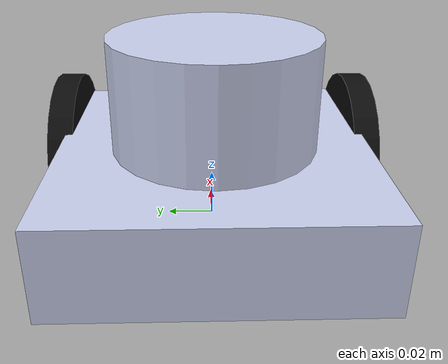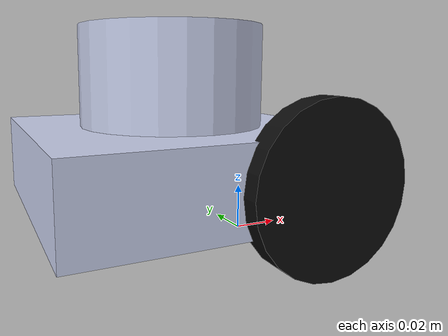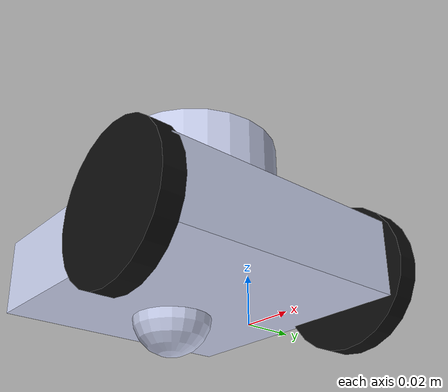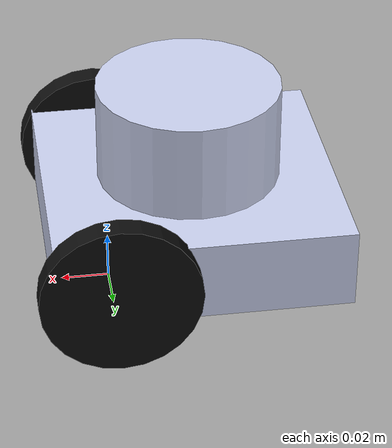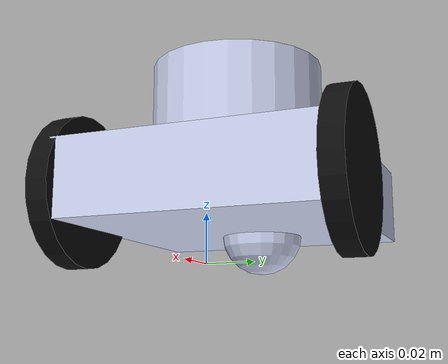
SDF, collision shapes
<?xml version="1.0"?>
<sdf version="1.6">
  <model name="boe_robot">
    <static>false</static>
    <self_collide>false</self_collide>
    <!--
      Robot phải tiếp tục nhận lực từ hai bánh khi Nav2 chỉnh yaw tại goal.
      Không cho ODE đưa model về trạng thái ngủ sau khi dừng tịnh tiến.
    -->
    <allow_auto_disable>false</allow_auto_disable>

    <!--
      Gazebo gộp các chi tiết nối cố định vào base_link để tránh hệ ràng buộc
      thừa làm ODE sinh NaN. URDF/RViz vẫn giữ đầy đủ các link và TF riêng.
    -->
    <link name="base_link">
      <pose>-0.0319316266 0.0042939669 0.03215 0 0 0</pose>
      <inertial>
        <pose>0 0 0.018 0 0 0</pose>
        <mass>0.25</mass>
        <inertia>
          <ixx>3.93e-04</ixx>
          <ixy>0</ixy>
          <ixz>0</ixz>
          <iyy>4.17e-04</iyy>
          <iyz>0</iyz>
          <izz>5.75e-04</izz>
        </inertia>
      </inertial>
      <collision name="base_collision">
        <pose>-0.0018954 -0.0042940 0.0018238 0 0 0</pose>
        <geometry>
          <box>
            <size>0.1209 0.1150 0.0335</size>
          </box>
        </geometry>
      </collision>
      <visual name="base_visual">
        <geometry>
          <mesh>
            <uri>model://boe_robot_description/meshes/base_link.STL</uri>
          </mesh>
        </geometry>
        <material>
          <ambient>0.796 0.824 0.937 1</ambient>
          <diffuse>0.796 0.824 0.937 1</diffuse>
        </material>
      </visual>
      <collision name="lidar_collision">
        <pose>-0.0026153108 -0.0043260086 0.0390737661 0 0 0</pose>
        <geometry>
          <cylinder>
            <radius>0.038</radius>
            <length>0.041</length>
          </cylinder>
        </geometry>
      </collision>
      <visual name="lidar_visual">
        <pose>-0.0070723108 -0.0045653019 0.0434219487 0 0 0</pose>
        <geometry>
          <mesh>
            <uri>model://boe_robot_description/meshes/lidar_link.STL</uri>
          </mesh>
        </geometry>
        <material>
          <ambient>0.15 0.15 0.15 1</ambient>
          <diffuse>0.15 0.15 0.15 1</diffuse>
        </material>
      </visual>
      <!--
        LiDAR 2D được gộp vào base_link trong SDF để mô hình vật lý ổn định.
        frame_name vẫn là lidar_link vì URDF đã xuất TF base_link -> lidar_link.
      -->
      <sensor name="boe_lidar" type="ray">
        <pose>-0.0070723108 -0.0045653019 0.0434219487 0 0 0</pose>
        <always_on>true</always_on>
        <visualize>true</visualize>
        <update_rate>10.0</update_rate>
        <ray>
          <scan>
            <horizontal>
              <samples>360</samples>
              <resolution>1.0</resolution>
              <min_angle>-3.1415926536</min_angle>
              <max_angle>3.1415926536</max_angle>
            </horizontal>
          </scan>
          <range>
            <min>0.08</min>
            <max>8.0</max>
            <resolution>0.01</resolution>
          </range>
          <noise>
            <type>gaussian</type>
            <mean>0.0</mean>
            <stddev>0.005</stddev>
          </noise>
        </ray>
        <plugin
          name="gazebo_ros_ray_sensor"
          filename="libgazebo_ros_ray_sensor.so">
          <ros>
            <remapping>~/out:=scan</remapping>
          </ros>
          <output_type>sensor_msgs/LaserScan</output_type>
          <frame_name>lidar_link</frame_name>
        </plugin>
      </sensor>
      <collision name="caster_base_collision">
        <pose>-0.0411669073 -0.0042939669 0.0126581966 0 0 0</pose>
        <geometry>
          <box>
            <size>0.02925 0.04230 0.00883</size>
          </box>
        </geometry>
      </collision>
      <visual name="caster_base_visual">
        <pose>-0.0049954073 -0.0042939669 0.0185737626 0 0 0</pose>
        <geometry>
          <mesh>
            <uri>model://boe_robot_description/meshes/caster_base_link.STL</uri>
          </mesh>
        </geometry>
        <material>
          <ambient>0.796 0.824 0.937 1</ambient>
          <diffuse>0.796 0.824 0.937 1</diffuse>
        </material>
      </visual>
      <!-- Điểm tỳ vật lý; hai link caster bên dưới chỉ để hiển thị. -->
      <collision name="caster_support_collision">
        <pose>-0.0231868044 -0.0003851059 -0.0141 0 0 0</pose>
        <geometry>
          <sphere>
            <radius>0.01805</radius>
          </sphere>
        </geometry>
        <surface>
          <friction>
            <ode>
              <mu>0.02</mu>
              <mu2>0.02</mu2>
              <slip1>0.01</slip1>
              <slip2>0.01</slip2>
            </ode>
          </friction>
          <contact>
            <ode>
              <kp>100000</kp>
              <kd>10</kd>
              <max_vel>0.01</max_vel>
              <min_depth>0.0005</min_depth>
            </ode>
          </contact>
        </surface>
      </collision>
    </link>

    <!-- Bánh trái: tâm tuyệt đối (0.001, 0.0575, 0.032724). -->
    <link name="wheel_left_link">
      <pose>0.001 0.0575 0.0327237626 0 0 0</pose>
      <inertial>
        <mass>0.03</mass>
        <inertia>
          <ixx>8.27e-06</ixx>
          <ixy>0</ixy>
          <ixz>0</ixz>
          <iyy>1.61e-05</iyy>
          <iyz>0</iyz>
          <izz>8.27e-06</izz>
        </inertia>
      </inertial>
      <collision name="wheel_left_collision">
        <pose>0 0.002125 0 1.5707963268 0 0</pose>
        <geometry>
          <cylinder>
            <radius>0.03272</radius>
            <length>0.00975</length>
          </cylinder>
        </geometry>
        <surface>
          <friction>
            <ode>
              <!-- Bám theo hướng lăn X, cho phép trượt ngang khi quay vi sai. -->
              <!-- Bám cao theo hướng lăn để bánh không quay trơn. -->
              <mu>5.0</mu>
              <!--
                Ma sát ngang thấp hơn để hai bánh có thể trượt ngang
                một lượng nhỏ khi robot quay vi sai tại chỗ.
              -->
              <mu2>0.20</mu2>
              <fdir1>1 0 0</fdir1>
              <slip2>0.01</slip2>
            </ode>
          </friction>
          <contact>
            <ode>
              <kp>100000</kp>
              <kd>10</kd>
              <max_vel>0.01</max_vel>
              <min_depth>0.0005</min_depth>
            </ode>
          </contact>
        </surface>
      </collision>
      <visual name="wheel_left_visual">
        <pose>0 0 0 1.5707963268 0 0</pose>
        <geometry>
          <mesh>
            <uri>model://boe_robot_description/meshes/wheel_left_link.STL</uri>
          </mesh>
        </geometry>
        <material>
          <ambient>0.05 0.05 0.05 1</ambient>
          <diffuse>0.05 0.05 0.05 1</diffuse>
        </material>
      </visual>
    </link>

    <joint name="wheel_left_joint" type="revolute">
      <parent>base_link</parent>
      <child>wheel_left_link</child>
      <pose>0 0 0 0 0 0</pose>
      <axis>
        <xyz>0 1 0</xyz>
        <limit>
          <lower>-1000000</lower>
          <upper>1000000</upper>
          <effort>1.0</effort>
          <velocity>20.0</velocity>
        </limit>
      </axis>
    </joint>

    <!-- Bánh phải: tâm tuyệt đối (-0.001, -0.0575, 0.032724). -->
    <link name="wheel_right_link">
      <pose>-0.001 -0.0575 0.0327237626 0 0 0</pose>
      <inertial>
        <mass>0.03</mass>
        <inertia>
          <ixx>8.27e-06</ixx>
          <ixy>0</ixy>
          <ixz>0</ixz>
          <iyy>1.61e-05</iyy>
          <iyz>0</iyz>
          <izz>8.27e-06</izz>
        </inertia>
      </inertial>
      <collision name="wheel_right_collision">
        <pose>0 -0.002125 0 -1.5707963268 0 0</pose>
        <geometry>
          <cylinder>
            <radius>0.03272</radius>
            <length>0.00975</length>
          </cylinder>
        </geometry>
        <surface>
          <friction>
            <ode>
              <!-- Hai bánh dùng cùng quy ước trục X là hướng lăn. -->
              <mu>5.0</mu>
              <mu2>0.20</mu2>
              <fdir1>1 0 0</fdir1>
              <slip2>0.01</slip2>
            </ode>
          </friction>
          <contact>
            <ode>
              <kp>100000</kp>
              <kd>10</kd>
              <max_vel>0.01</max_vel>
              <min_depth>0.0005</min_depth>
            </ode>
          </contact>
        </surface>
      </collision>
      <visual name="wheel_right_visual">
        <pose>0 0 0 -1.5707963268 0 0</pose>
        <geometry>
          <mesh>
            <uri>model://boe_robot_description/meshes/wheel_right_link.STL</uri>
          </mesh>
        </geometry>
        <material>
          <ambient>0.05 0.05 0.05 1</ambient>
          <diffuse>0.05 0.05 0.05 1</diffuse>
        </material>
      </visual>
    </link>

    <joint name="wheel_right_joint" type="revolute">
      <parent>base_link</parent>
      <child>wheel_right_link</child>
      <pose>0 0 0 0 0 0</pose>
      <axis>
        <xyz>0 1 0</xyz>
        <limit>
          <lower>-1000000</lower>
          <upper>1000000</upper>
          <effort>1.0</effort>
          <velocity>20.0</velocity>
        </limit>
      </axis>
    </joint>

    <!--
      Plugin dẫn động vi sai:
      nhận geometry_msgs/Twist trên /cmd_vel và điều khiển hai bánh chủ động.
    -->
    <plugin name="boe_diff_drive" filename="libgazebo_ros_diff_drive.so">
      <update_rate>50</update_rate>

      <!-- Hai joint chủ động. -->
      <left_joint>wheel_left_joint</left_joint>
      <right_joint>wheel_right_joint</right_joint>

      <!-- Thông số động học của robot. -->
      <wheel_separation>0.115</wheel_separation>
      <wheel_diameter>0.06544</wheel_diameter>

      <!-- Giới hạn mô-men và gia tốc bánh. -->
      <!--
        Robot chỉ nặng khoảng 0.31 kg. Mô-men quá lớn làm bánh trượt
        và khiến ODE sinh chuyển động sai khi đổi hướng.
      -->
      <max_wheel_torque>0.10</max_wheel_torque>
      <max_wheel_acceleration>0.0</max_wheel_acceleration>

      <!-- Topic lệnh vận tốc. -->
      <command_topic>cmd_vel</command_topic>

      <!-- Odometry và TF. -->
      <publish_odom>true</publish_odom>
      <publish_odom_tf>true</publish_odom_tf>
      <publish_wheel_tf>false</publish_wheel_tf>
      <odometry_topic>odom</odometry_topic>
      <odometry_frame>odom</odometry_frame>
      <robot_base_frame>base_footprint</robot_base_frame>
    </plugin>

    <!-- Xuất góc joint thật từ Gazebo lên /joint_states. -->
    <plugin
      name="boe_joint_state_publisher"
      filename="libgazebo_ros_joint_state_publisher.so">
      <update_rate>50</update_rate>
      <joint_name>wheel_left_joint</joint_name>
      <joint_name>wheel_right_joint</joint_name>
    </plugin>
  </model>
</sdf>
